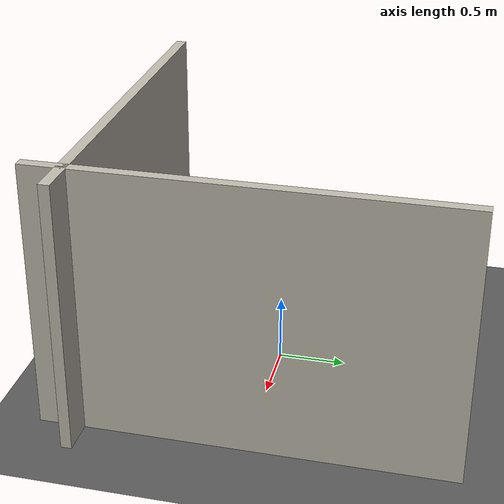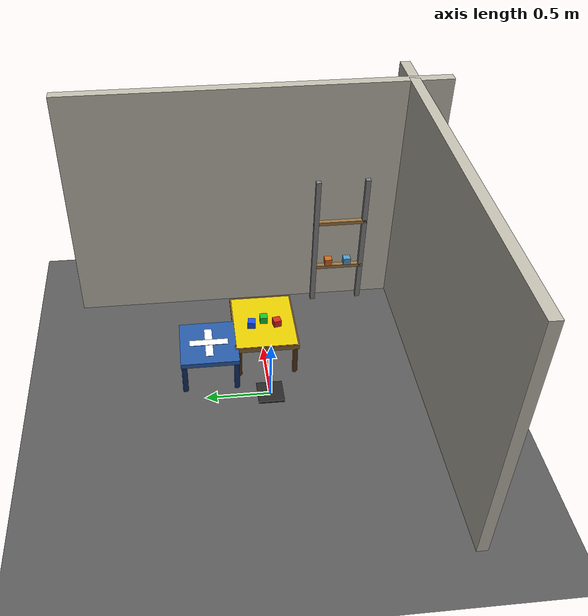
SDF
<?xml version="1.0" ?>
<sdf version="1.9">
<world name="cargo_world">

  <!-- ── Physics ──────────────────────────────────────────────── -->
  <physics name="1ms" type="ignored">
    <max_step_size>0.001</max_step_size>
    <real_time_factor>1.0</real_time_factor>
  </physics>

  <!-- ── Required Gz Sim plugins ──────────────────────────────── -->
  <plugin filename="gz-sim-physics-system"
          name="gz::sim::systems::Physics"/>
  <plugin filename="gz-sim-user-commands-system"
          name="gz::sim::systems::UserCommands"/>
  <plugin filename="gz-sim-scene-broadcaster-system"
          name="gz::sim::systems::SceneBroadcaster"/>
  <plugin filename="gz-sim-sensors-system"
          name="gz::sim::systems::Sensors">
    <render_engine>ogre2</render_engine>
  </plugin>
  <plugin filename="gz-sim-contact-system"
          name="gz::sim::systems::Contact"/>

  <!-- ── Ambient + sun ────────────────────────────────────────── -->
  <scene>
    <ambient>0.4 0.4 0.4 1</ambient>
    <background>0.25 0.25 0.30 1</background>
    <shadows>true</shadows>
  </scene>

  <light name="sun" type="directional">
    <pose>0 0 10 0 0 0</pose>
    <cast_shadows>true</cast_shadows>
    <diffuse>0.85 0.85 0.85 1</diffuse>
    <specular>0.15 0.15 0.15 1</specular>
    <direction>-0.5 0.2 -0.9</direction>
    <attenuation>
      <range>1000</range>
      <constant>0.9</constant>
      <linear>0.01</linear>
      <quadratic>0.001</quadratic>
    </attenuation>
  </light>

  <!-- Overhead warehouse lamps -->
  <light name="lamp_1" type="point">
    <pose>0.5 0.0 1.8 0 0 0</pose>
    <diffuse>1.0 0.95 0.85 1</diffuse>
    <specular>0.3 0.3 0.3 1</specular>
    <attenuation>
      <range>4</range>
      <constant>0.4</constant>
      <linear>0.3</linear>
      <quadratic>0.02</quadratic>
    </attenuation>
    <cast_shadows>false</cast_shadows>
  </light>

  <light name="lamp_2" type="point">
    <pose>0.3 0.45 1.8 0 0 0</pose>
    <diffuse>1.0 0.95 0.85 1</diffuse>
    <specular>0.3 0.3 0.3 1</specular>
    <attenuation>
      <range>4</range>
      <constant>0.4</constant>
      <linear>0.3</linear>
      <quadratic>0.02</quadratic>
    </attenuation>
    <cast_shadows>false</cast_shadows>
  </light>

  <!-- ── Ground plane ─────────────────────────────────────────── -->
  <model name="ground_plane">
    <static>true</static>
    <link name="link">
      <collision name="collision">
        <geometry>
          <plane><normal>0 0 1</normal><size>10 10</size></plane>
        </geometry>
        <surface>
          <friction><ode><mu>1.0</mu><mu2>1.0</mu2></ode></friction>
        </surface>
      </collision>
      <visual name="visual">
        <geometry>
          <plane><normal>0 0 1</normal><size>10 10</size></plane>
        </geometry>
        <material>
          <ambient>0.35 0.35 0.35 1</ambient>
          <diffuse>0.35 0.35 0.35 1</diffuse>
          <specular>0.05 0.05 0.05 1</specular>
        </material>
      </visual>
    </link>
  </model>

  <!-- ── Pick station ──────────────────────────────────────────
       Table top at z=0.30, robot picks boxes at (0.45–0.50, ±0.10, 0.33)
  ──────────────────────────────────────────────────────────── -->
  <model name="pick_table">
    <static>true</static>
    <pose>0.5 0.0 0 0 0 0</pose>
    <link name="link">
      <!-- Table top -->
      <visual name="top">
        <pose>0 0 0.28 0 0 0</pose>
        <geometry><box><size>0.60 0.50 0.04</size></box></geometry>
        <material>
          <ambient>0.55 0.38 0.18 1</ambient>
          <diffuse>0.55 0.38 0.18 1</diffuse>
          <specular>0.05 0.05 0.05 1</specular>
        </material>
      </visual>
      <collision name="top">
        <pose>0 0 0.28 0 0 0</pose>
        <geometry><box><size>0.60 0.50 0.04</size></box></geometry>
        <surface><friction><ode><mu>0.8</mu><mu2>0.8</mu2></ode></friction></surface>
      </collision>
      <!-- Legs -->
      <visual name="leg_fl">
        <pose>0.27 0.22 0.13 0 0 0</pose>
        <geometry><cylinder><radius>0.022</radius><length>0.26</length></cylinder></geometry>
        <material><ambient>0.30 0.20 0.10 1</ambient><diffuse>0.30 0.20 0.10 1</diffuse></material>
      </visual>
      <visual name="leg_fr">
        <pose>0.27 -0.22 0.13 0 0 0</pose>
        <geometry><cylinder><radius>0.022</radius><length>0.26</length></cylinder></geometry>
        <material><ambient>0.30 0.20 0.10 1</ambient><diffuse>0.30 0.20 0.10 1</diffuse></material>
      </visual>
      <visual name="leg_bl">
        <pose>-0.27 0.22 0.13 0 0 0</pose>
        <geometry><cylinder><radius>0.022</radius><length>0.26</length></cylinder></geometry>
        <material><ambient>0.30 0.20 0.10 1</ambient><diffuse>0.30 0.20 0.10 1</diffuse></material>
      </visual>
      <visual name="leg_br">
        <pose>-0.27 -0.22 0.13 0 0 0</pose>
        <geometry><cylinder><radius>0.022</radius><length>0.26</length></cylinder></geometry>
        <material><ambient>0.30 0.20 0.10 1</ambient><diffuse>0.30 0.20 0.10 1</diffuse></material>
      </visual>
      <!-- Pick-zone marker strip (yellow) -->
      <visual name="zone_marker">
        <pose>0 0 0.301 0 0 0</pose>
        <geometry><box><size>0.58 0.48 0.002</size></box></geometry>
        <material>
          <ambient>0.9 0.8 0.0 1</ambient>
          <diffuse>0.9 0.8 0.0 1</diffuse>
        </material>
      </visual>
    </link>
  </model>

  <model name="cargo_box_1">
    <pose>0.45 -0.10 0.33 0 0 0.2</pose>
    <link name="link">
      <inertial>
        <mass>0.25</mass>
        <inertia>
          <ixx>0.000150</ixx><ixy>0</ixy><ixz>0</ixz>
          <iyy>0.000150</iyy><iyz>0</iyz><izz>0.000150</izz>
        </inertia>
      </inertial>
      <collision name="collision">
        <geometry><box><size>0.06 0.06 0.06</size></box></geometry>
        <surface>
          <friction><ode><mu>0.9</mu><mu2>0.9</mu2></ode></friction>
          <contact><ode><kp>1e6</kp><kd>1</kd></ode></contact>
        </surface>
      </collision>
      <visual name="visual">
        <geometry><box><size>0.06 0.06 0.06</size></box></geometry>
        <material>
          <ambient>0.85 0.15 0.10 1</ambient>
          <diffuse>0.85 0.15 0.10 1</diffuse>
          <specular>0.3 0.3 0.3 1</specular>
        </material>
      </visual>
    </link>
  </model>

  <model name="cargo_box_2">
    <pose>0.50 0.00 0.33 0 0 0</pose>
    <link name="link">
      <inertial>
        <mass>0.25</mass>
        <inertia>
          <ixx>0.000150</ixx><ixy>0</ixy><ixz>0</ixz>
          <iyy>0.000150</iyy><iyz>0</iyz><izz>0.000150</izz>
        </inertia>
      </inertial>
      <collision name="collision">
        <geometry><box><size>0.06 0.06 0.06</size></box></geometry>
        <surface>
          <friction><ode><mu>0.9</mu><mu2>0.9</mu2></ode></friction>
          <contact><ode><kp>1e6</kp><kd>1</kd></ode></contact>
        </surface>
      </collision>
      <visual name="visual">
        <geometry><box><size>0.06 0.06 0.06</size></box></geometry>
        <material>
          <ambient>0.10 0.75 0.15 1</ambient>
          <diffuse>0.10 0.75 0.15 1</diffuse>
          <specular>0.3 0.3 0.3 1</specular>
        </material>
      </visual>
    </link>
  </model>

  <model name="cargo_box_3">
    <pose>0.45 0.10 0.33 0 0 -0.15</pose>
    <link name="link">
      <inertial>
        <mass>0.25</mass>
        <inertia>
          <ixx>0.000150</ixx><ixy>0</ixy><ixz>0</ixz>
          <iyy>0.000150</iyy><iyz>0</iyz><izz>0.000150</izz>
        </inertia>
      </inertial>
      <collision name="collision">
        <geometry><box><size>0.06 0.06 0.06</size></box></geometry>
        <surface>
          <friction><ode><mu>0.9</mu><mu2>0.9</mu2></ode></friction>
          <contact><ode><kp>1e6</kp><kd>1</kd></ode></contact>
        </surface>
      </collision>
      <visual name="visual">
        <geometry><box><size>0.06 0.06 0.06</size></box></geometry>
        <material>
          <ambient>0.10 0.30 0.90 1</ambient>
          <diffuse>0.10 0.30 0.90 1</diffuse>
          <specular>0.3 0.3 0.3 1</specular>
        </material>
      </visual>
    </link>
  </model>

  <model name="place_table">
    <static>true</static>
    <pose>0.30 0.45 0 0 0 0</pose>
    <link name="link">
      <visual name="top">
        <pose>0 0 0.28 0 0 0</pose>
        <geometry><box><size>0.45 0.45 0.04</size></box></geometry>
        <material>
          <ambient>0.15 0.35 0.65 1</ambient>
          <diffuse>0.15 0.35 0.65 1</diffuse>
          <specular>0.05 0.05 0.05 1</specular>
        </material>
      </visual>
      <collision name="top">
        <pose>0 0 0.28 0 0 0</pose>
        <geometry><box><size>0.45 0.45 0.04</size></box></geometry>
        <surface><friction><ode><mu>0.8</mu><mu2>0.8</mu2></ode></friction></surface>
      </collision>
      <!-- Legs -->
      <visual name="leg_fl">
        <pose>0.20 0.20 0.13 0 0 0</pose>
        <geometry><cylinder><radius>0.022</radius><length>0.26</length></cylinder></geometry>
        <material><ambient>0.08 0.18 0.38 1</ambient><diffuse>0.08 0.18 0.38 1</diffuse></material>
      </visual>
      <visual name="leg_fr">
        <pose>0.20 -0.20 0.13 0 0 0</pose>
        <geometry><cylinder><radius>0.022</radius><length>0.26</length></cylinder></geometry>
        <material><ambient>0.08 0.18 0.38 1</ambient><diffuse>0.08 0.18 0.38 1</diffuse></material>
      </visual>
      <visual name="leg_bl">
        <pose>-0.20 0.20 0.13 0 0 0</pose>
        <geometry><cylinder><radius>0.022</radius><length>0.26</length></cylinder></geometry>
        <material><ambient>0.08 0.18 0.38 1</ambient><diffuse>0.08 0.18 0.38 1</diffuse></material>
      </visual>
      <visual name="leg_br">
        <pose>-0.20 -0.20 0.13 0 0 0</pose>
        <geometry><cylinder><radius>0.022</radius><length>0.26</length></cylinder></geometry>
        <material><ambient>0.08 0.18 0.38 1</ambient><diffuse>0.08 0.18 0.38 1</diffuse></material>
      </visual>
      <!-- Drop-zone marker (white cross) -->
      <visual name="marker_h">
        <pose>0 0 0.301 0 0 0</pose>
        <geometry><box><size>0.30 0.06 0.002</size></box></geometry>
        <material><ambient>1 1 1 1</ambient><diffuse>1 1 1 1</diffuse></material>
      </visual>
      <visual name="marker_v">
        <pose>0 0 0.302 0 0 0</pose>
        <geometry><box><size>0.06 0.30 0.002</size></box></geometry>
        <material><ambient>1 1 1 1</ambient><diffuse>1 1 1 1</diffuse></material>
      </visual>
    </link>
  </model>

  <!-- ── Robot mount plate ─────────────────────────────────────
       Visual-only base plate under the robot arm.
  ──────────────────────────────────────────────────────────── -->
  <model name="robot_mount">
    <static>true</static>
    <pose>0 0 0 0 0 0</pose>
    <link name="link">
      <visual name="plate">
        <pose>0 0 0.01 0 0 0</pose>
        <geometry><box><size>0.20 0.20 0.02</size></box></geometry>
        <material>
          <ambient>0.15 0.15 0.15 1</ambient>
          <diffuse>0.15 0.15 0.15 1</diffuse>
          <specular>0.4 0.4 0.4 1</specular>
        </material>
      </visual>
      <collision name="plate">
        <pose>0 0 0.01 0 0 0</pose>
        <geometry><box><size>0.20 0.20 0.02</size></box></geometry>
      </collision>
    </link>
  </model>

  <!-- ── Back wall ─────────────────────────────────────────────── -->
  <model name="back_wall">
    <static>true</static>
    <pose>1.20 0 1.00 0 0 0</pose>
    <link name="link">
      <visual name="visual">
        <geometry><box><size>0.08 3.00 2.00</size></box></geometry>
        <material>
          <ambient>0.75 0.73 0.68 1</ambient>
          <diffuse>0.75 0.73 0.68 1</diffuse>
        </material>
      </visual>
      <collision name="collision">
        <geometry><box><size>0.08 3.00 2.00</size></box></geometry>
      </collision>
    </link>
  </model>

  <model name="side_wall">
    <static>true</static>
    <pose>0 -1.20 1.00 0 0 0</pose>
    <link name="link">
      <visual name="visual">
        <geometry><box><size>3.00 0.08 2.00</size></box></geometry>
        <material>
          <ambient>0.75 0.73 0.68 1</ambient>
          <diffuse>0.75 0.73 0.68 1</diffuse>
        </material>
      </visual>
      <collision name="collision">
        <geometry><box><size>3.00 0.08 2.00</size></box></geometry>
      </collision>
    </link>
  </model>

  <!-- ── Storage shelf (background prop) ───────────────────────── -->
  <model name="shelf">
    <static>true</static>
    <pose>1.10 -0.70 0 0 0 0</pose>
    <link name="link">
      <!-- Uprights -->
      <visual name="upright_l">
        <pose>0 0.20 0.60 0 0 0</pose>
        <geometry><box><size>0.04 0.04 1.20</size></box></geometry>
        <material><ambient>0.5 0.5 0.5 1</ambient><diffuse>0.5 0.5 0.5 1</diffuse></material>
      </visual>
      <visual name="upright_r">
        <pose>0 -0.20 0.60 0 0 0</pose>
        <geometry><box><size>0.04 0.04 1.20</size></box></geometry>
        <material><ambient>0.5 0.5 0.5 1</ambient><diffuse>0.5 0.5 0.5 1</diffuse></material>
      </visual>
      <!-- Shelves -->
      <visual name="shelf_lo">
        <pose>0 0 0.35 0 0 0</pose>
        <geometry><box><size>0.04 0.44 0.03</size></box></geometry>
        <material><ambient>0.6 0.45 0.25 1</ambient><diffuse>0.6 0.45 0.25 1</diffuse></material>
      </visual>
      <visual name="shelf_hi">
        <pose>0 0 0.80 0 0 0</pose>
        <geometry><box><size>0.04 0.44 0.03</size></box></geometry>
        <material><ambient>0.6 0.45 0.25 1</ambient><diffuse>0.6 0.45 0.25 1</diffuse></material>
      </visual>
      <!-- Props on shelf -->
      <visual name="prop_1">
        <pose>0 0.08 0.40 0 0 0</pose>
        <geometry><box><size>0.06 0.06 0.06</size></box></geometry>
        <material><ambient>0.8 0.4 0.1 1</ambient><diffuse>0.8 0.4 0.1 1</diffuse></material>
      </visual>
      <visual name="prop_2">
        <pose>0 -0.08 0.40 0 0 0</pose>
        <geometry><box><size>0.06 0.06 0.06</size></box></geometry>
        <material><ambient>0.3 0.6 0.8 1</ambient><diffuse>0.3 0.6 0.8 1</diffuse></material>
      </visual>
      <collision name="collision">
        <pose>0 0 0.60 0 0 0</pose>
        <geometry><box><size>0.04 0.44 1.20</size></box></geometry>
      </collision>
    </link>
  </model>

</world>
</sdf>
